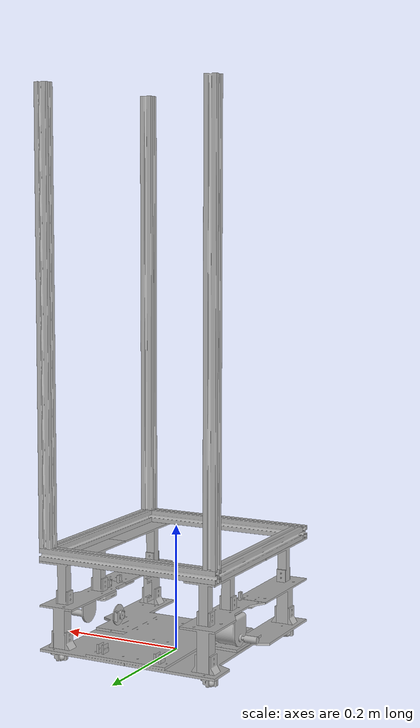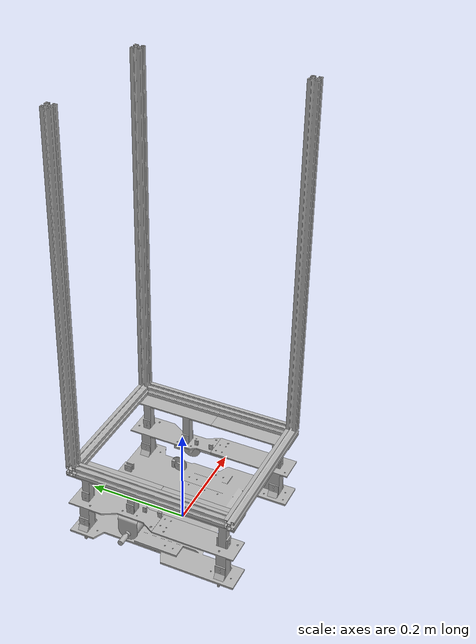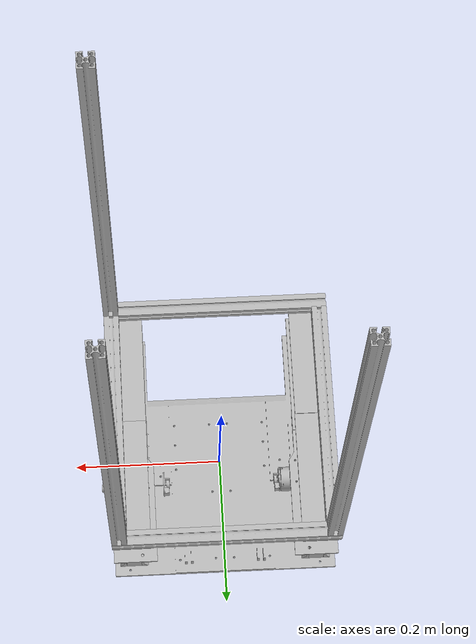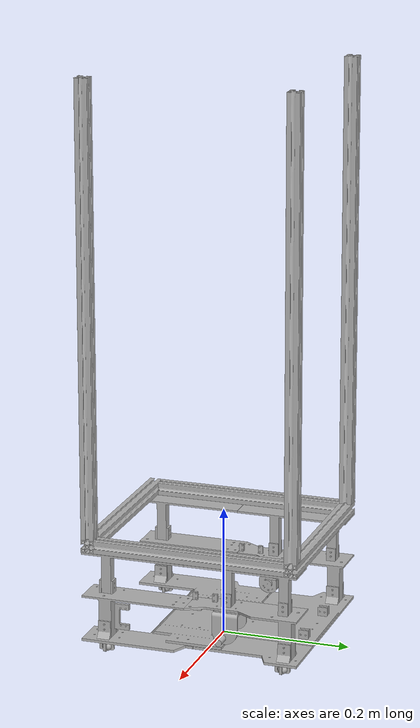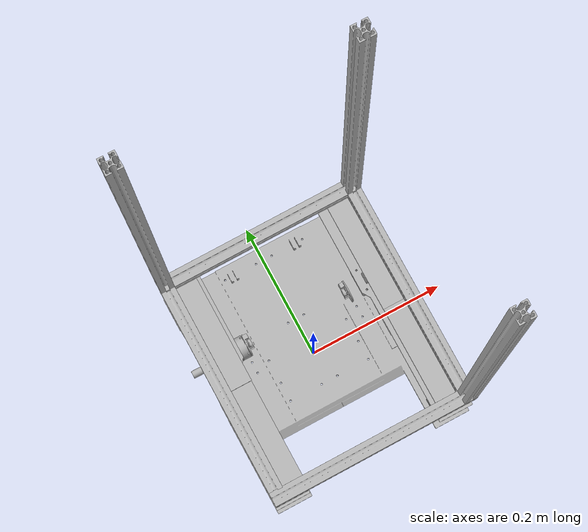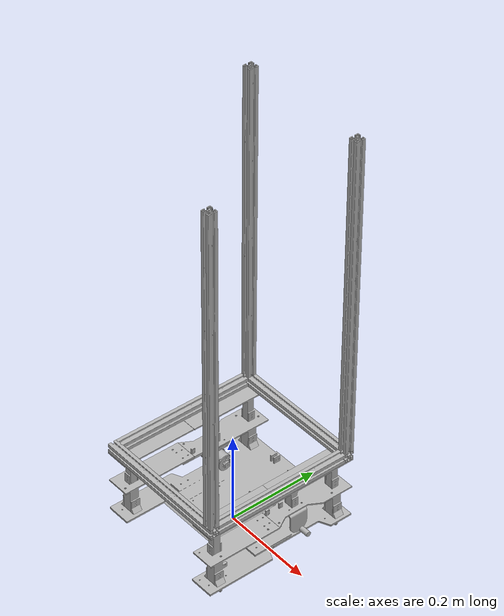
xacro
<?xml version="1.0" ?>
<robot name="for_urdf" xmlns:xacro="http://www.ros.org/wiki/xacro">

<xacro:include filename="$(find for_urdf_description)/urdf/materials.xacro" />
<xacro:include filename="$(find for_urdf_description)/urdf/for_urdf.trans" />
<xacro:include filename="$(find for_urdf_description)/urdf/for_urdf.gazebo" />
<link name="base_link">
  <inertial>
    <origin xyz="-1.2195313026150367e-05 0.021577569051065944 0.02337210595330476" rpy="0 0 0"/>
    <mass value="3.938554509425517"/>
    <inertia ixx="0.028764" iyy="0.025488" izz="0.054159" ixy="-8e-06" iyz="-2.7e-05" ixz="-0.0"/>
  </inertial>
  <visual>
    <origin xyz="0 0 0" rpy="0 0 0"/>
    <geometry>
      <mesh filename="package://for_urdf_description/meshes/base_link.stl" scale="0.001 0.001 0.001"/>
    </geometry>
    <material name="silver"/>
  </visual>
  <collision>
    <origin xyz="0 0 0" rpy="0 0 0"/>
    <geometry>
      <mesh filename="package://for_urdf_description/meshes/base_link.stl" scale="0.001 0.001 0.001"/>
    </geometry>
  </collision>
</link>

<link name="pillar2_1">
  <inertial>
    <origin xyz="-0.010179509755534874 0.022969783988736822 0.03637466466768585" rpy="0 0 0"/>
    <mass value="0.4310905715690864"/>
    <inertia ixx="0.000891" iyy="0.000266" izz="0.000723" ixy="-4e-06" iyz="-0.000162" ixz="-5e-06"/>
  </inertial>
  <visual>
    <origin xyz="-0.134262 0.143761 -0.036968" rpy="0 0 0"/>
    <geometry>
      <mesh filename="package://for_urdf_description/meshes/pillar2_1.stl" scale="0.001 0.001 0.001"/>
    </geometry>
    <material name="silver"/>
  </visual>
  <collision>
    <origin xyz="-0.134262 0.143761 -0.036968" rpy="0 0 0"/>
    <geometry>
      <mesh filename="package://for_urdf_description/meshes/pillar2_1.stl" scale="0.001 0.001 0.001"/>
    </geometry>
  </collision>
</link>

<link name="pillar1_1">
  <inertial>
    <origin xyz="0.009792150951377032 0.02319057967072942 0.03745240879644929" rpy="0 0 0"/>
    <mass value="0.4093585439827445"/>
    <inertia ixx="0.000876" iyy="0.000252" izz="0.00072" ixy="4e-06" iyz="-0.00016" ixz="1e-06"/>
  </inertial>
  <visual>
    <origin xyz="0.134262 0.143761 -0.036968" rpy="0 0 0"/>
    <geometry>
      <mesh filename="package://for_urdf_description/meshes/pillar1_1.stl" scale="0.001 0.001 0.001"/>
    </geometry>
    <material name="silver"/>
  </visual>
  <collision>
    <origin xyz="0.134262 0.143761 -0.036968" rpy="0 0 0"/>
    <geometry>
      <mesh filename="package://for_urdf_description/meshes/pillar1_1.stl" scale="0.001 0.001 0.001"/>
    </geometry>
  </collision>
</link>

<link name="pillar3_1">
  <inertial>
    <origin xyz="-0.006748822322711193 -0.042356231207087786 0.040204615166513885" rpy="0 0 0"/>
    <mass value="0.48466323804216116"/>
    <inertia ixx="0.001822" iyy="0.000292" izz="0.001661" ixy="7.3e-05" iyz="0.00029" ixz="-2.4e-05"/>
  </inertial>
  <visual>
    <origin xyz="0.113862 -0.140802 -0.036867" rpy="0 0 0"/>
    <geometry>
      <mesh filename="package://for_urdf_description/meshes/pillar3_1.stl" scale="0.001 0.001 0.001"/>
    </geometry>
    <material name="silver"/>
  </visual>
  <collision>
    <origin xyz="0.113862 -0.140802 -0.036867" rpy="0 0 0"/>
    <geometry>
      <mesh filename="package://for_urdf_description/meshes/pillar3_1.stl" scale="0.001 0.001 0.001"/>
    </geometry>
  </collision>
</link>

<link name="pillar4_1">
  <inertial>
    <origin xyz="0.006748822322711429 -0.04235623120709034 0.04020453281688405" rpy="0 0 0"/>
    <mass value="0.4846632380421608"/>
    <inertia ixx="0.001822" iyy="0.000292" izz="0.001661" ixy="-7.3e-05" iyz="0.00029" ixz="2.4e-05"/>
  </inertial>
  <visual>
    <origin xyz="-0.113862 -0.140802 -0.036968" rpy="0 0 0"/>
    <geometry>
      <mesh filename="package://for_urdf_description/meshes/pillar4_1.stl" scale="0.001 0.001 0.001"/>
    </geometry>
    <material name="silver"/>
  </visual>
  <collision>
    <origin xyz="-0.113862 -0.140802 -0.036968" rpy="0 0 0"/>
    <geometry>
      <mesh filename="package://for_urdf_description/meshes/pillar4_1.stl" scale="0.001 0.001 0.001"/>
    </geometry>
  </collision>
</link>

<link name="pillar_U4_1">
  <inertial>
    <origin xyz="-0.008268587516396295 -0.05299022145158498 0.0424852073012946" rpy="0 0 0"/>
    <mass value="0.4369378029746493"/>
    <inertia ixx="0.001243" iyy="0.000266" izz="0.001091" ixy="-3e-05" iyz="5.9e-05" ixz="-2.5e-05"/>
  </inertial>
  <visual>
    <origin xyz="-0.129445 -0.137223 -0.099855" rpy="0 0 0"/>
    <geometry>
      <mesh filename="package://for_urdf_description/meshes/pillar_U4_1.stl" scale="0.001 0.001 0.001"/>
    </geometry>
    <material name="silver"/>
  </visual>
  <collision>
    <origin xyz="-0.129445 -0.137223 -0.099855" rpy="0 0 0"/>
    <geometry>
      <mesh filename="package://for_urdf_description/meshes/pillar_U4_1.stl" scale="0.001 0.001 0.001"/>
    </geometry>
  </collision>
</link>

<link name="pillar_U2_1">
  <inertial>
    <origin xyz="0.0016940277556796723 0.024000405215341122 0.047666342957964264" rpy="0 0 0"/>
    <mass value="0.3077257736629943"/>
    <inertia ixx="0.000732" iyy="0.000169" izz="0.000652" ixy="-9e-06" iyz="-0.000123" ixz="-7e-06"/>
  </inertial>
  <visual>
    <origin xyz="-0.122145 0.135446 -0.099851" rpy="0 0 0"/>
    <geometry>
      <mesh filename="package://for_urdf_description/meshes/pillar_U2_1.stl" scale="0.001 0.001 0.001"/>
    </geometry>
    <material name="silver"/>
  </visual>
  <collision>
    <origin xyz="-0.122145 0.135446 -0.099851" rpy="0 0 0"/>
    <geometry>
      <mesh filename="package://for_urdf_description/meshes/pillar_U2_1.stl" scale="0.001 0.001 0.001"/>
    </geometry>
  </collision>
</link>

<link name="pillar_U1_1">
  <inertial>
    <origin xyz="-0.001694027755680158 0.039000405215341136 0.04766634295796429" rpy="0 0 0"/>
    <mass value="0.3077257736629942"/>
    <inertia ixx="0.000732" iyy="0.000169" izz="0.000652" ixy="9e-06" iyz="-0.000123" ixz="7e-06"/>
  </inertial>
  <visual>
    <origin xyz="0.122145 0.150846 -0.099851" rpy="0 0 0"/>
    <geometry>
      <mesh filename="package://for_urdf_description/meshes/pillar_U1_1.stl" scale="0.001 0.001 0.001"/>
    </geometry>
    <material name="silver"/>
  </visual>
  <collision>
    <origin xyz="0.122145 0.150846 -0.099851" rpy="0 0 0"/>
    <geometry>
      <mesh filename="package://for_urdf_description/meshes/pillar_U1_1.stl" scale="0.001 0.001 0.001"/>
    </geometry>
  </collision>
</link>

<link name="pillar_U3_1">
  <inertial>
    <origin xyz="-0.014568412483602869 0.03790277854841743 0.04248528965092439" rpy="0 0 0"/>
    <mass value="0.4369378029746493"/>
    <inertia ixx="0.001243" iyy="0.000266" izz="0.001091" ixy="3e-05" iyz="5.9e-05" ixz="2.5e-05"/>
  </inertial>
  <visual>
    <origin xyz="0.106208 -0.04633 -0.099754" rpy="0 0 0"/>
    <geometry>
      <mesh filename="package://for_urdf_description/meshes/pillar_U3_1.stl" scale="0.001 0.001 0.001"/>
    </geometry>
    <material name="silver"/>
  </visual>
  <collision>
    <origin xyz="0.106208 -0.04633 -0.099754" rpy="0 0 0"/>
    <geometry>
      <mesh filename="package://for_urdf_description/meshes/pillar_U3_1.stl" scale="0.001 0.001 0.001"/>
    </geometry>
  </collision>
</link>

<link name="s_wheel_part3_1">
  <inertial>
    <origin xyz="2.781896414616458e-07 -0.020000330515778902 -0.004052450585275407" rpy="0 0 0"/>
    <mass value="0.02772671159160422"/>
    <inertia ixx="3e-06" iyy="1e-06" izz="4e-06" ixy="-0.0" iyz="-0.0" ixz="-0.0"/>
  </inertial>
  <visual>
    <origin xyz="0.12941 -0.156655 -0.0195" rpy="0 0 0"/>
    <geometry>
      <mesh filename="package://for_urdf_description/meshes/s_wheel_part3_1.stl" scale="0.001 0.001 0.001"/>
    </geometry>
    <material name="silver"/>
  </visual>
  <collision>
    <origin xyz="0.12941 -0.156655 -0.0195" rpy="0 0 0"/>
    <geometry>
      <mesh filename="package://for_urdf_description/meshes/s_wheel_part3_1.stl" scale="0.001 0.001 0.001"/>
    </geometry>
  </collision>
</link>

<link name="s_wheel_part1_1">
  <inertial>
    <origin xyz="2.7818948830637957e-07 -0.01999953810367451 -0.0040524512261547775" rpy="0 0 0"/>
    <mass value="0.02772671296158732"/>
    <inertia ixx="3e-06" iyy="1e-06" izz="4e-06" ixy="0.0" iyz="0.0" ixz="-0.0"/>
  </inertial>
  <visual>
    <origin xyz="0.12941 0.122262 -0.0195" rpy="0 0 0"/>
    <geometry>
      <mesh filename="package://for_urdf_description/meshes/s_wheel_part1_1.stl" scale="0.001 0.001 0.001"/>
    </geometry>
    <material name="silver"/>
  </visual>
  <collision>
    <origin xyz="0.12941 0.122262 -0.0195" rpy="0 0 0"/>
    <geometry>
      <mesh filename="package://for_urdf_description/meshes/s_wheel_part1_1.stl" scale="0.001 0.001 0.001"/>
    </geometry>
  </collision>
</link>

<link name="s_wheel_part2_1">
  <inertial>
    <origin xyz="-2.7819006667706425e-07 -0.019999538098252626 -0.004052450585022467" rpy="0 0 0"/>
    <mass value="0.02772671159107112"/>
    <inertia ixx="3e-06" iyy="1e-06" izz="4e-06" ixy="-0.0" iyz="0.0" ixz="-0.0"/>
  </inertial>
  <visual>
    <origin xyz="-0.12941 0.122262 -0.0195" rpy="0 0 0"/>
    <geometry>
      <mesh filename="package://for_urdf_description/meshes/s_wheel_part2_1.stl" scale="0.001 0.001 0.001"/>
    </geometry>
    <material name="silver"/>
  </visual>
  <collision>
    <origin xyz="-0.12941 0.122262 -0.0195" rpy="0 0 0"/>
    <geometry>
      <mesh filename="package://for_urdf_description/meshes/s_wheel_part2_1.stl" scale="0.001 0.001 0.001"/>
    </geometry>
  </collision>
</link>

<link name="s_wheel_part4_1">
  <inertial>
    <origin xyz="-2.7819004821960647e-07 -0.020000330521203036 -0.004052451226148685" rpy="0 0 0"/>
    <mass value="0.0277267129615744"/>
    <inertia ixx="3e-06" iyy="1e-06" izz="4e-06" ixy="0.0" iyz="-0.0" ixz="-0.0"/>
  </inertial>
  <visual>
    <origin xyz="-0.12941 -0.156655 -0.0195" rpy="0 0 0"/>
    <geometry>
      <mesh filename="package://for_urdf_description/meshes/s_wheel_part4_1.stl" scale="0.001 0.001 0.001"/>
    </geometry>
    <material name="silver"/>
  </visual>
  <collision>
    <origin xyz="-0.12941 -0.156655 -0.0195" rpy="0 0 0"/>
    <geometry>
      <mesh filename="package://for_urdf_description/meshes/s_wheel_part4_1.stl" scale="0.001 0.001 0.001"/>
    </geometry>
  </collision>
</link>

<link name="s_wheel4_1">
  <inertial>
    <origin xyz="-2.7818973918902756e-07 -3.316017939125615e-07 2.3158558404290375e-16" rpy="0 0 0"/>
    <mass value="0.013872095061007617"/>
    <inertia ixx="0.0" iyy="0.0" izz="0.0" ixy="0.0" iyz="0.0" ixz="0.0"/>
  </inertial>
  <visual>
    <origin xyz="-0.12941 -0.136655 -0.0075" rpy="0 0 0"/>
    <geometry>
      <mesh filename="package://for_urdf_description/meshes/s_wheel4_1.stl" scale="0.001 0.001 0.001"/>
    </geometry>
    <material name="silver"/>
  </visual>
  <collision>
    <origin xyz="-0.12941 -0.136655 -0.0075" rpy="0 0 0"/>
    <geometry>
      <mesh filename="package://for_urdf_description/meshes/s_wheel4_1.stl" scale="0.001 0.001 0.001"/>
    </geometry>
  </collision>
</link>

<link name="s_wheel3_1">
  <inertial>
    <origin xyz="2.781897392445387e-07 -3.316017939403171e-07 2.2638141361497333e-16" rpy="0 0 0"/>
    <mass value="0.013872095061007334"/>
    <inertia ixx="0.0" iyy="0.0" izz="0.0" ixy="0.0" iyz="0.0" ixz="0.0"/>
  </inertial>
  <visual>
    <origin xyz="0.12941 -0.136655 -0.0075" rpy="0 0 0"/>
    <geometry>
      <mesh filename="package://for_urdf_description/meshes/s_wheel3_1.stl" scale="0.001 0.001 0.001"/>
    </geometry>
    <material name="silver"/>
  </visual>
  <collision>
    <origin xyz="0.12941 -0.136655 -0.0075" rpy="0 0 0"/>
    <geometry>
      <mesh filename="package://for_urdf_description/meshes/s_wheel3_1.stl" scale="0.001 0.001 0.001"/>
    </geometry>
  </collision>
</link>

<link name="s_wheel1_1">
  <inertial>
    <origin xyz="2.7818973899473853e-07 4.6298236683339766e-07 -1.5699247457590104e-16" rpy="0 0 0"/>
    <mass value="0.013872095061007523"/>
    <inertia ixx="0.0" iyy="0.0" izz="0.0" ixy="0.0" iyz="-0.0" ixz="-0.0"/>
  </inertial>
  <visual>
    <origin xyz="0.12941 0.142262 -0.0075" rpy="0 0 0"/>
    <geometry>
      <mesh filename="package://for_urdf_description/meshes/s_wheel1_1.stl" scale="0.001 0.001 0.001"/>
    </geometry>
    <material name="silver"/>
  </visual>
  <collision>
    <origin xyz="0.12941 0.142262 -0.0075" rpy="0 0 0"/>
    <geometry>
      <mesh filename="package://for_urdf_description/meshes/s_wheel1_1.stl" scale="0.001 0.001 0.001"/>
    </geometry>
  </collision>
</link>

<link name="s_wheel2_1">
  <inertial>
    <origin xyz="-2.7818973899473853e-07 4.6298236683339766e-07 -1.5872719805187785e-16" rpy="0 0 0"/>
    <mass value="0.01387209506100733"/>
    <inertia ixx="0.0" iyy="0.0" izz="0.0" ixy="-0.0" iyz="0.0" ixz="-0.0"/>
  </inertial>
  <visual>
    <origin xyz="-0.12941 0.142262 -0.0075" rpy="0 0 0"/>
    <geometry>
      <mesh filename="package://for_urdf_description/meshes/s_wheel2_1.stl" scale="0.001 0.001 0.001"/>
    </geometry>
    <material name="silver"/>
  </visual>
  <collision>
    <origin xyz="-0.12941 0.142262 -0.0075" rpy="0 0 0"/>
    <geometry>
      <mesh filename="package://for_urdf_description/meshes/s_wheel2_1.stl" scale="0.001 0.001 0.001"/>
    </geometry>
  </collision>
</link>

<link name="frame7_1">
  <inertial>
    <origin xyz="-0.1500000000000112 -0.00969977353878812 0.010000035526005119" rpy="0 0 0"/>
    <mass value="0.3421810721015129"/>
    <inertia ixx="3e-05" iyy="0.002581" izz="0.002581" ixy="0.0" iyz="-0.0" ixz="-0.0"/>
  </inertial>
  <visual>
    <origin xyz="-0.15 -0.163527 -0.161689" rpy="0 0 0"/>
    <geometry>
      <mesh filename="package://for_urdf_description/meshes/frame7_1.stl" scale="0.001 0.001 0.001"/>
    </geometry>
    <material name="silver"/>
  </visual>
  <collision>
    <origin xyz="-0.15 -0.163527 -0.161689" rpy="0 0 0"/>
    <geometry>
      <mesh filename="package://for_urdf_description/meshes/frame7_1.stl" scale="0.001 0.001 0.001"/>
    </geometry>
  </collision>
</link>

<link name="frame6_1">
  <inertial>
    <origin xyz="-0.010000000000015663 -0.1499997735388397 -0.006324964474008071" rpy="0 0 0"/>
    <mass value="0.34218107210152543"/>
    <inertia ixx="0.002581" iyy="3e-05" izz="0.002581" ixy="0.0" iyz="-0.0" ixz="-0.0"/>
  </inertial>
  <visual>
    <origin xyz="-0.15 -0.143827 -0.178014" rpy="0 0 0"/>
    <geometry>
      <mesh filename="package://for_urdf_description/meshes/frame6_1.stl" scale="0.001 0.001 0.001"/>
    </geometry>
    <material name="silver"/>
  </visual>
  <collision>
    <origin xyz="-0.15 -0.143827 -0.178014" rpy="0 0 0"/>
    <geometry>
      <mesh filename="package://for_urdf_description/meshes/frame6_1.stl" scale="0.001 0.001 0.001"/>
    </geometry>
  </collision>
</link>

<link name="wheel_part2_1">
  <inertial>
    <origin xyz="0.056392280803677114 -0.012385046130127003 -0.037343013940456686" rpy="0 0 0"/>
    <mass value="2.744298414149501"/>
    <inertia ixx="0.003208" iyy="0.002752" izz="0.00265" ixy="-3.4e-05" iyz="1.2e-05" ixz="0.000205"/>
  </inertial>
  <visual>
    <origin xyz="-0.100075 -0.061839 -0.089724" rpy="0 0 0"/>
    <geometry>
      <mesh filename="package://for_urdf_description/meshes/wheel_part2_1.stl" scale="0.001 0.001 0.001"/>
    </geometry>
    <material name="silver"/>
  </visual>
  <collision>
    <origin xyz="-0.100075 -0.061839 -0.089724" rpy="0 0 0"/>
    <geometry>
      <mesh filename="package://for_urdf_description/meshes/wheel_part2_1.stl" scale="0.001 0.001 0.001"/>
    </geometry>
  </collision>
</link>

<link name="wheel_part1_1">
  <inertial>
    <origin xyz="-0.032097030629325285 -0.014982873037674156 -0.03780444538586996" rpy="0 0 0"/>
    <mass value="2.7442984121986385"/>
    <inertia ixx="0.003211" iyy="0.00278" izz="0.002671" ixy="-4e-06" iyz="-0.0" ixz="-0.000216"/>
  </inertial>
  <visual>
    <origin xyz="0.125075 -0.061839 -0.089623" rpy="0 0 0"/>
    <geometry>
      <mesh filename="package://for_urdf_description/meshes/wheel_part1_1.stl" scale="0.001 0.001 0.001"/>
    </geometry>
    <material name="silver"/>
  </visual>
  <collision>
    <origin xyz="0.125075 -0.061839 -0.089623" rpy="0 0 0"/>
    <geometry>
      <mesh filename="package://for_urdf_description/meshes/wheel_part1_1.stl" scale="0.001 0.001 0.001"/>
    </geometry>
  </collision>
</link>

<link name="frame4_1">
  <inertial>
    <origin xyz="-0.010000000000042863 -0.006324773538833067 0.3500000355254351" rpy="0 0 0"/>
    <mass value="0.7984225015702242"/>
    <inertia ixx="0.032637" iyy="0.032637" izz="6.9e-05" ixy="-0.0" iyz="-0.0" ixz="-0.0"/>
  </inertial>
  <visual>
    <origin xyz="-0.15 -0.160152 -0.181689" rpy="0 0 0"/>
    <geometry>
      <mesh filename="package://for_urdf_description/meshes/frame4_1.stl" scale="0.001 0.001 0.001"/>
    </geometry>
    <material name="silver"/>
  </visual>
  <collision>
    <origin xyz="-0.15 -0.160152 -0.181689" rpy="0 0 0"/>
    <geometry>
      <mesh filename="package://for_urdf_description/meshes/frame4_1.stl" scale="0.001 0.001 0.001"/>
    </geometry>
  </collision>
</link>

<link name="frame2_1">
  <inertial>
    <origin xyz="-0.010000000000003895 -0.006325267705695997 0.35000003552821124" rpy="0 0 0"/>
    <mass value="0.7984225015702532"/>
    <inertia ixx="0.032637" iyy="0.032637" izz="6.9e-05" ixy="0.0" iyz="0.0" ixz="-0.0"/>
  </inertial>
  <visual>
    <origin xyz="-0.1502 0.158204 -0.181689" rpy="0 0 0"/>
    <geometry>
      <mesh filename="package://for_urdf_description/meshes/frame2_1.stl" scale="0.001 0.001 0.001"/>
    </geometry>
    <material name="silver"/>
  </visual>
  <collision>
    <origin xyz="-0.1502 0.158204 -0.181689" rpy="0 0 0"/>
    <geometry>
      <mesh filename="package://for_urdf_description/meshes/frame2_1.stl" scale="0.001 0.001 0.001"/>
    </geometry>
  </collision>
</link>

<link name="frame5_1">
  <inertial>
    <origin xyz="-0.15000000000001557 0.009699732294285668 0.010000035526026158" rpy="0 0 0"/>
    <mass value="0.3421810721014952"/>
    <inertia ixx="3e-05" iyy="0.002581" izz="0.002581" ixy="-0.0" iyz="-0.0" ixz="0.0"/>
  </inertial>
  <visual>
    <origin xyz="-0.1502 0.174229 -0.161689" rpy="0 0 0"/>
    <geometry>
      <mesh filename="package://for_urdf_description/meshes/frame5_1.stl" scale="0.001 0.001 0.001"/>
    </geometry>
    <material name="silver"/>
  </visual>
  <collision>
    <origin xyz="-0.1502 0.174229 -0.161689" rpy="0 0 0"/>
    <geometry>
      <mesh filename="package://for_urdf_description/meshes/frame5_1.stl" scale="0.001 0.001 0.001"/>
    </geometry>
  </collision>
</link>

<link name="frame3_1">
  <inertial>
    <origin xyz="0.010000000000042919 0.006325226461166927 0.35000003552543524" rpy="0 0 0"/>
    <mass value="0.7984225015702239"/>
    <inertia ixx="0.032637" iyy="0.032637" izz="6.9e-05" ixy="0.0" iyz="-0.0" ixz="0.0"/>
  </inertial>
  <visual>
    <origin xyz="0.15 -0.147502 -0.181689" rpy="0 0 0"/>
    <geometry>
      <mesh filename="package://for_urdf_description/meshes/frame3_1.stl" scale="0.001 0.001 0.001"/>
    </geometry>
    <material name="silver"/>
  </visual>
  <collision>
    <origin xyz="0.15 -0.147502 -0.181689" rpy="0 0 0"/>
    <geometry>
      <mesh filename="package://for_urdf_description/meshes/frame3_1.stl" scale="0.001 0.001 0.001"/>
    </geometry>
  </collision>
</link>

<link name="frame8_1">
  <inertial>
    <origin xyz="0.009999999999995318 -0.14999977353884208 -0.0063249644739832855" rpy="0 0 0"/>
    <mass value="0.3421810721015025"/>
    <inertia ixx="0.002581" iyy="3e-05" izz="0.002581" ixy="0.0" iyz="0.0" ixz="-0.0"/>
  </inertial>
  <visual>
    <origin xyz="0.15 -0.143827 -0.178014" rpy="0 0 0"/>
    <geometry>
      <mesh filename="package://for_urdf_description/meshes/frame8_1.stl" scale="0.001 0.001 0.001"/>
    </geometry>
    <material name="silver"/>
  </visual>
  <collision>
    <origin xyz="0.15 -0.143827 -0.178014" rpy="0 0 0"/>
    <geometry>
      <mesh filename="package://for_urdf_description/meshes/frame8_1.stl" scale="0.001 0.001 0.001"/>
    </geometry>
  </collision>
</link>

<joint name="Rigid 1" type="fixed">
  <origin xyz="0.134262 -0.143761 0.036968" rpy="0 0 0"/>
  <parent link="base_link"/>
  <child link="pillar2_1"/>
</joint>

<joint name="Rigid 2" type="fixed">
  <origin xyz="-0.134262 -0.143761 0.036968" rpy="0 0 0"/>
  <parent link="base_link"/>
  <child link="pillar1_1"/>
</joint>

<joint name="Rigid 3" type="fixed">
  <origin xyz="-0.113862 0.140802 0.036867" rpy="0 0 0"/>
  <parent link="base_link"/>
  <child link="pillar3_1"/>
</joint>

<joint name="Rigid 4" type="fixed">
  <origin xyz="0.113862 0.140802 0.036968" rpy="0 0 0"/>
  <parent link="base_link"/>
  <child link="pillar4_1"/>
</joint>

<joint name="Rigid 5" type="fixed">
  <origin xyz="0.015583 -0.003579 0.062887" rpy="0 0 0"/>
  <parent link="pillar4_1"/>
  <child link="pillar_U4_1"/>
</joint>

<joint name="Rigid 6" type="fixed">
  <origin xyz="-0.012117 0.008315 0.062883" rpy="0 0 0"/>
  <parent link="pillar2_1"/>
  <child link="pillar_U2_1"/>
</joint>

<joint name="Rigid 7" type="fixed">
  <origin xyz="0.012117 -0.007085 0.062883" rpy="0 0 0"/>
  <parent link="pillar1_1"/>
  <child link="pillar_U1_1"/>
</joint>

<joint name="Rigid 8" type="fixed">
  <origin xyz="0.007654 -0.094472 0.062887" rpy="0 0 0"/>
  <parent link="pillar3_1"/>
  <child link="pillar_U3_1"/>
</joint>

<joint name="Rigid 9" type="fixed">
  <origin xyz="-0.12941 0.156655 0.0195" rpy="0 0 0"/>
  <parent link="base_link"/>
  <child link="s_wheel_part3_1"/>
</joint>

<joint name="Rigid 10" type="fixed">
  <origin xyz="-0.12941 -0.122262 0.0195" rpy="0 0 0"/>
  <parent link="base_link"/>
  <child link="s_wheel_part1_1"/>
</joint>

<joint name="Rigid 11" type="fixed">
  <origin xyz="0.12941 -0.122262 0.0195" rpy="0 0 0"/>
  <parent link="base_link"/>
  <child link="s_wheel_part2_1"/>
</joint>

<joint name="Rigid 12" type="fixed">
  <origin xyz="0.12941 0.156655 0.0195" rpy="0 0 0"/>
  <parent link="base_link"/>
  <child link="s_wheel_part4_1"/>
</joint>

<joint name="Revolute 13" type="continuous">
  <origin xyz="0.0 -0.02 -0.012" rpy="0 0 0"/>
  <parent link="s_wheel_part4_1"/>
  <child link="s_wheel4_1"/>
  <axis xyz="0.0 0.0 1.0"/>
</joint>

<joint name="Revolute 14" type="continuous">
  <origin xyz="0.0 -0.02 -0.012" rpy="0 0 0"/>
  <parent link="s_wheel_part3_1"/>
  <child link="s_wheel3_1"/>
  <axis xyz="0.0 0.0 1.0"/>
</joint>

<joint name="Revolute 15" type="continuous">
  <origin xyz="0.0 -0.02 -0.012" rpy="0 0 0"/>
  <parent link="s_wheel_part1_1"/>
  <child link="s_wheel1_1"/>
  <axis xyz="0.0 0.0 1.0"/>
</joint>

<joint name="Revolute 16" type="continuous">
  <origin xyz="0.0 -0.02 -0.012" rpy="0 0 0"/>
  <parent link="s_wheel_part2_1"/>
  <child link="s_wheel2_1"/>
  <axis xyz="0.0 0.0 1.0"/>
</joint>

<joint name="Rigid 19" type="fixed">
  <origin xyz="0.020555 0.026304 0.061834" rpy="0 0 0"/>
  <parent link="pillar_U4_1"/>
  <child link="frame7_1"/>
</joint>

<joint name="Rigid 21" type="fixed">
  <origin xyz="0.0 -0.0197 0.016325" rpy="0 0 0"/>
  <parent link="frame7_1"/>
  <child link="frame6_1"/>
</joint>

<joint name="Rigid 31" type="fixed">
  <origin xyz="-0.013787 -0.078963 0.052756" rpy="0 0 0"/>
  <parent link="pillar4_1"/>
  <child link="wheel_part2_1"/>
</joint>

<joint name="Rigid 32" type="fixed">
  <origin xyz="-0.011213 -0.078963 0.052756" rpy="0 0 0"/>
  <parent link="pillar3_1"/>
  <child link="wheel_part1_1"/>
</joint>

<joint name="Rigid 34" type="fixed">
  <origin xyz="0.0 -0.003375 0.02" rpy="0 0 0"/>
  <parent link="frame7_1"/>
  <child link="frame4_1"/>
</joint>

<joint name="Rigid 35" type="fixed">
  <origin xyz="0.0 0.016025 0.02" rpy="0 0 0"/>
  <parent link="frame5_1"/>
  <child link="frame2_1"/>
</joint>

<joint name="Rigid 36" type="fixed">
  <origin xyz="0.028055 -0.038783 0.061838" rpy="0 0 0"/>
  <parent link="pillar_U2_1"/>
  <child link="frame5_1"/>
</joint>

<joint name="Rigid 39" type="fixed">
  <origin xyz="-0.3 -0.016025 0.02" rpy="0 0 0"/>
  <parent link="frame7_1"/>
  <child link="frame3_1"/>
</joint>

<joint name="Rigid 42" type="fixed">
  <origin xyz="-0.3 -0.0197 0.016325" rpy="0 0 0"/>
  <parent link="frame7_1"/>
  <child link="frame8_1"/>
</joint>

</robot>

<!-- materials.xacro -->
<robot name="for_urdf" xmlns:xacro="http://www.ros.org/wiki/xacro" >

<material name="silver">
  <color rgba="0.700 0.700 0.700 1.000"/>
</material>

</robot>

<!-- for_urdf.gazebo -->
<robot name="for_urdf" xmlns:xacro="http://www.ros.org/wiki/xacro" >

<xacro:property name="body_color" value="Gazebo/Silver" />

<gazebo>
  <plugin name="control" filename="libgazebo_ros_control.so"/>
</gazebo>
<gazebo reference="base_link">
  <material>${body_color}</material>
  <mu1>0.2</mu1>
  <mu2>0.2</mu2>
  <selfCollide>true</selfCollide>
  <gravity>true</gravity>
</gazebo>

<gazebo reference="pillar2_1">
  <material>${body_color}</material>
  <mu1>0.2</mu1>
  <mu2>0.2</mu2>
  <selfCollide>true</selfCollide>
</gazebo>

<gazebo reference="pillar1_1">
  <material>${body_color}</material>
  <mu1>0.2</mu1>
  <mu2>0.2</mu2>
  <selfCollide>true</selfCollide>
</gazebo>

<gazebo reference="pillar3_1">
  <material>${body_color}</material>
  <mu1>0.2</mu1>
  <mu2>0.2</mu2>
  <selfCollide>true</selfCollide>
</gazebo>

<gazebo reference="pillar4_1">
  <material>${body_color}</material>
  <mu1>0.2</mu1>
  <mu2>0.2</mu2>
  <selfCollide>true</selfCollide>
</gazebo>

<gazebo reference="pillar_U4_1">
  <material>${body_color}</material>
  <mu1>0.2</mu1>
  <mu2>0.2</mu2>
  <selfCollide>true</selfCollide>
</gazebo>

<gazebo reference="pillar_U2_1">
  <material>${body_color}</material>
  <mu1>0.2</mu1>
  <mu2>0.2</mu2>
  <selfCollide>true</selfCollide>
</gazebo>

<gazebo reference="pillar_U1_1">
  <material>${body_color}</material>
  <mu1>0.2</mu1>
  <mu2>0.2</mu2>
  <selfCollide>true</selfCollide>
</gazebo>

<gazebo reference="pillar_U3_1">
  <material>${body_color}</material>
  <mu1>0.2</mu1>
  <mu2>0.2</mu2>
  <selfCollide>true</selfCollide>
</gazebo>

<gazebo reference="s_wheel_part3_1">
  <material>${body_color}</material>
  <mu1>0.2</mu1>
  <mu2>0.2</mu2>
  <selfCollide>true</selfCollide>
</gazebo>

<gazebo reference="s_wheel_part1_1">
  <material>${body_color}</material>
  <mu1>0.2</mu1>
  <mu2>0.2</mu2>
  <selfCollide>true</selfCollide>
</gazebo>

<gazebo reference="s_wheel_part2_1">
  <material>${body_color}</material>
  <mu1>0.2</mu1>
  <mu2>0.2</mu2>
  <selfCollide>true</selfCollide>
</gazebo>

<gazebo reference="s_wheel_part4_1">
  <material>${body_color}</material>
  <mu1>0.2</mu1>
  <mu2>0.2</mu2>
  <selfCollide>true</selfCollide>
</gazebo>

<gazebo reference="s_wheel4_1">
  <material>${body_color}</material>
  <mu1>0.2</mu1>
  <mu2>0.2</mu2>
  <selfCollide>true</selfCollide>
</gazebo>

<gazebo reference="s_wheel3_1">
  <material>${body_color}</material>
  <mu1>0.2</mu1>
  <mu2>0.2</mu2>
  <selfCollide>true</selfCollide>
</gazebo>

<gazebo reference="s_wheel1_1">
  <material>${body_color}</material>
  <mu1>0.2</mu1>
  <mu2>0.2</mu2>
  <selfCollide>true</selfCollide>
</gazebo>

<gazebo reference="s_wheel2_1">
  <material>${body_color}</material>
  <mu1>0.2</mu1>
  <mu2>0.2</mu2>
  <selfCollide>true</selfCollide>
</gazebo>

<gazebo reference="frame7_1">
  <material>${body_color}</material>
  <mu1>0.2</mu1>
  <mu2>0.2</mu2>
  <selfCollide>true</selfCollide>
</gazebo>

<gazebo reference="frame6_1">
  <material>${body_color}</material>
  <mu1>0.2</mu1>
  <mu2>0.2</mu2>
  <selfCollide>true</selfCollide>
</gazebo>

<gazebo reference="wheel_part2_1">
  <material>${body_color}</material>
  <mu1>0.2</mu1>
  <mu2>0.2</mu2>
  <selfCollide>true</selfCollide>
</gazebo>

<gazebo reference="wheel_part1_1">
  <material>${body_color}</material>
  <mu1>0.2</mu1>
  <mu2>0.2</mu2>
  <selfCollide>true</selfCollide>
</gazebo>

<gazebo reference="frame4_1">
  <material>${body_color}</material>
  <mu1>0.2</mu1>
  <mu2>0.2</mu2>
  <selfCollide>true</selfCollide>
</gazebo>

<gazebo reference="frame2_1">
  <material>${body_color}</material>
  <mu1>0.2</mu1>
  <mu2>0.2</mu2>
  <selfCollide>true</selfCollide>
</gazebo>

<gazebo reference="frame5_1">
  <material>${body_color}</material>
  <mu1>0.2</mu1>
  <mu2>0.2</mu2>
  <selfCollide>true</selfCollide>
</gazebo>

<gazebo reference="frame3_1">
  <material>${body_color}</material>
  <mu1>0.2</mu1>
  <mu2>0.2</mu2>
  <selfCollide>true</selfCollide>
</gazebo>

<gazebo reference="frame8_1">
  <material>${body_color}</material>
  <mu1>0.2</mu1>
  <mu2>0.2</mu2>
  <selfCollide>true</selfCollide>
</gazebo>

</robot>
